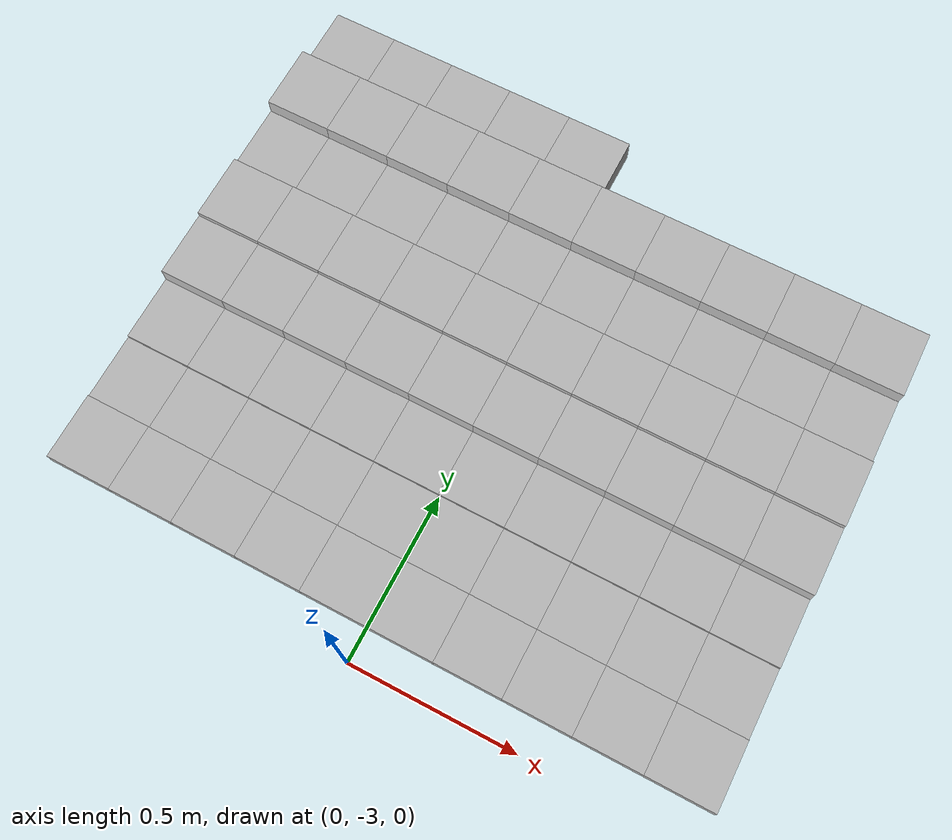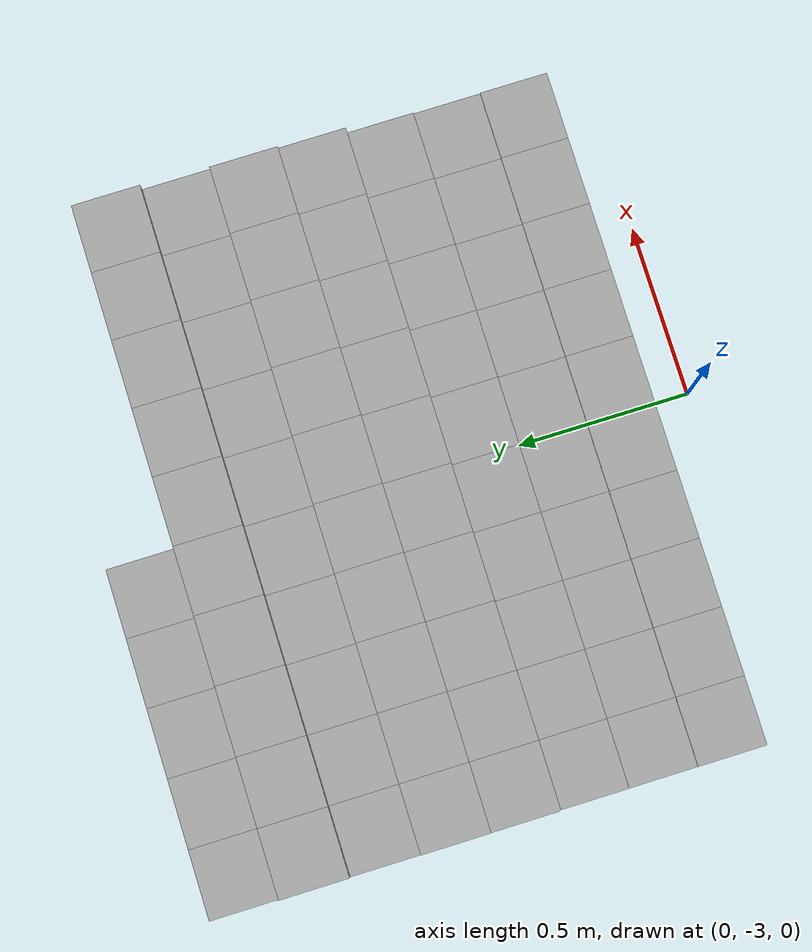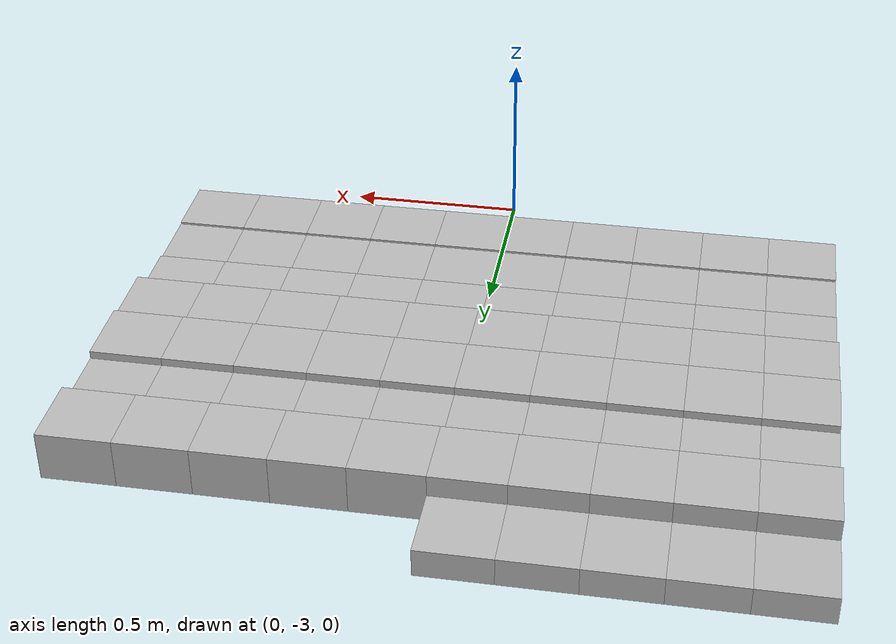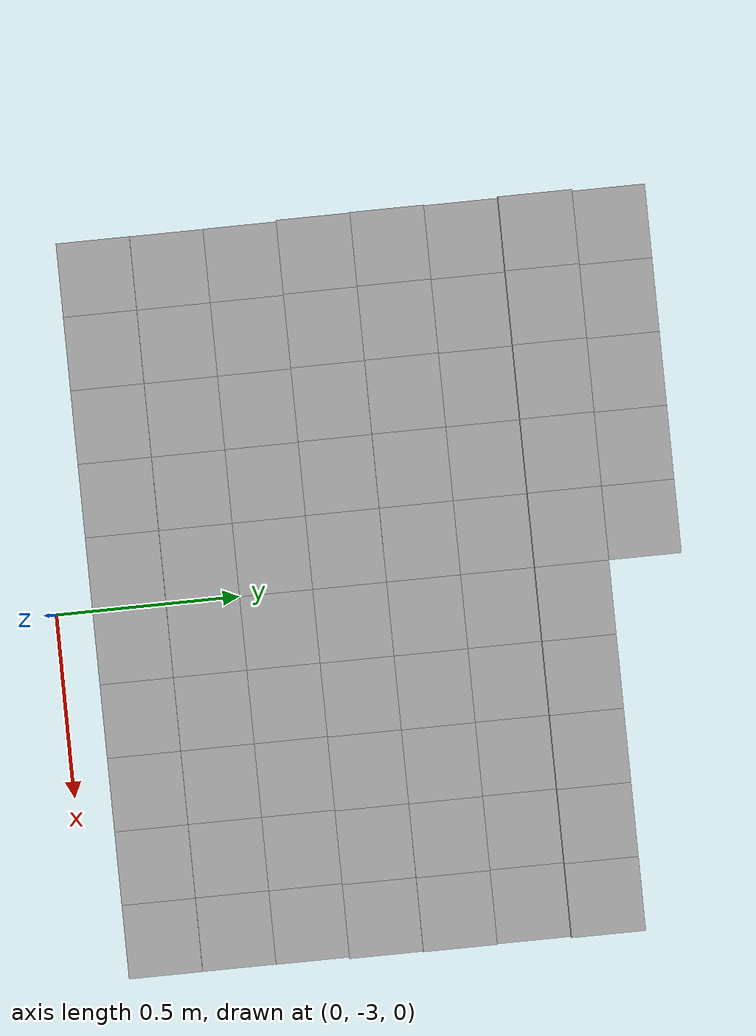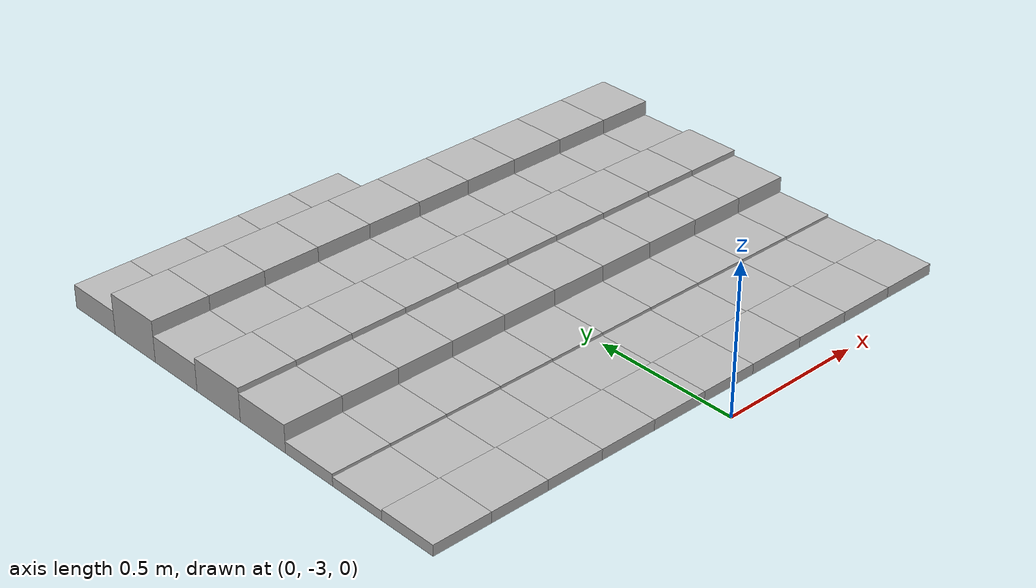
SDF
<sdf version="1.6">
 <model name="Terrain">
  <static>true</static>
  <link name="box_7_0">
   <pose>-0.9 -1.4 0.039535048557 0 0 0</pose>
   <inertial>
    <mass>1.0</mass>
    <inertia><ixx>0.0</ixx><ixy>0.0</ixy><ixz>0.0</ixz><iyy>0.0</iyy><iyz>0.0</iyz><izz>0.0</izz></inertia>
   </inertial>
   <collision name="collision"><geometry><box><size>0.2 0.2 0.079070097114</size></box></geometry></collision>
   <visual name="visual"><geometry><box><size>0.2 0.2 0.079070097114</size></box></geometry></visual>
  </link>
  <link name="box_7_1">
   <pose>-0.7 -1.4 0.039535048557 0 0 0</pose>
   <inertial>
    <mass>1.0</mass>
    <inertia><ixx>0.0</ixx><ixy>0.0</ixy><ixz>0.0</ixz><iyy>0.0</iyy><iyz>0.0</iyz><izz>0.0</izz></inertia>
   </inertial>
   <collision name="collision"><geometry><box><size>0.2 0.2 0.079070097114</size></box></geometry></collision>
   <visual name="visual"><geometry><box><size>0.2 0.2 0.079070097114</size></box></geometry></visual>
  </link>
  <link name="box_7_2">
   <pose>-0.5 -1.4 0.039535048557 0 0 0</pose>
   <inertial>
    <mass>1.0</mass>
    <inertia><ixx>0.0</ixx><ixy>0.0</ixy><ixz>0.0</ixz><iyy>0.0</iyy><iyz>0.0</iyz><izz>0.0</izz></inertia>
   </inertial>
   <collision name="collision"><geometry><box><size>0.2 0.2 0.079070097114</size></box></geometry></collision>
   <visual name="visual"><geometry><box><size>0.2 0.2 0.079070097114</size></box></geometry></visual>
  </link>
  <link name="box_7_3">
   <pose>-0.3 -1.4 0.039535048557 0 0 0</pose>
   <inertial>
    <mass>1.0</mass>
    <inertia><ixx>0.0</ixx><ixy>0.0</ixy><ixz>0.0</ixz><iyy>0.0</iyy><iyz>0.0</iyz><izz>0.0</izz></inertia>
   </inertial>
   <collision name="collision"><geometry><box><size>0.2 0.2 0.079070097114</size></box></geometry></collision>
   <visual name="visual"><geometry><box><size>0.2 0.2 0.079070097114</size></box></geometry></visual>
  </link>
  <link name="box_7_4">
   <pose>-0.1 -1.4 0.039535048557 0 0 0</pose>
   <inertial>
    <mass>1.0</mass>
    <inertia><ixx>0.0</ixx><ixy>0.0</ixy><ixz>0.0</ixz><iyy>0.0</iyy><iyz>0.0</iyz><izz>0.0</izz></inertia>
   </inertial>
   <collision name="collision"><geometry><box><size>0.2 0.2 0.079070097114</size></box></geometry></collision>
   <visual name="visual"><geometry><box><size>0.2 0.2 0.079070097114</size></box></geometry></visual>
  </link>
  <link name="box_8_0">
   <pose>-0.9 -1.6 0.0695468220321 0 0 0</pose>
   <inertial>
    <mass>1.0</mass>
    <inertia><ixx>0.0</ixx><ixy>0.0</ixy><ixz>0.0</ixz><iyy>0.0</iyy><iyz>0.0</iyz><izz>0.0</izz></inertia>
   </inertial>
   <collision name="collision"><geometry><box><size>0.2 0.2 0.139093644064</size></box></geometry></collision>
   <visual name="visual"><geometry><box><size>0.2 0.2 0.139093644064</size></box></geometry></visual>
  </link>
  <link name="box_8_1">
   <pose>-0.7 -1.6 0.0695468220321 0 0 0</pose>
   <inertial>
    <mass>1.0</mass>
    <inertia><ixx>0.0</ixx><ixy>0.0</ixy><ixz>0.0</ixz><iyy>0.0</iyy><iyz>0.0</iyz><izz>0.0</izz></inertia>
   </inertial>
   <collision name="collision"><geometry><box><size>0.2 0.2 0.139093644064</size></box></geometry></collision>
   <visual name="visual"><geometry><box><size>0.2 0.2 0.139093644064</size></box></geometry></visual>
  </link>
  <link name="box_8_2">
   <pose>-0.5 -1.6 0.0695468220321 0 0 0</pose>
   <inertial>
    <mass>1.0</mass>
    <inertia><ixx>0.0</ixx><ixy>0.0</ixy><ixz>0.0</ixz><iyy>0.0</iyy><iyz>0.0</iyz><izz>0.0</izz></inertia>
   </inertial>
   <collision name="collision"><geometry><box><size>0.2 0.2 0.139093644064</size></box></geometry></collision>
   <visual name="visual"><geometry><box><size>0.2 0.2 0.139093644064</size></box></geometry></visual>
  </link>
  <link name="box_8_3">
   <pose>-0.3 -1.6 0.0695468220321 0 0 0</pose>
   <inertial>
    <mass>1.0</mass>
    <inertia><ixx>0.0</ixx><ixy>0.0</ixy><ixz>0.0</ixz><iyy>0.0</iyy><iyz>0.0</iyz><izz>0.0</izz></inertia>
   </inertial>
   <collision name="collision"><geometry><box><size>0.2 0.2 0.139093644064</size></box></geometry></collision>
   <visual name="visual"><geometry><box><size>0.2 0.2 0.139093644064</size></box></geometry></visual>
  </link>
  <link name="box_8_4">
   <pose>-0.1 -1.6 0.0695468220321 0 0 0</pose>
   <inertial>
    <mass>1.0</mass>
    <inertia><ixx>0.0</ixx><ixy>0.0</ixy><ixz>0.0</ixz><iyy>0.0</iyy><iyz>0.0</iyz><izz>0.0</izz></inertia>
   </inertial>
   <collision name="collision"><geometry><box><size>0.2 0.2 0.139093644064</size></box></geometry></collision>
   <visual name="visual"><geometry><box><size>0.2 0.2 0.139093644064</size></box></geometry></visual>
  </link>
  <link name="box_8_5">
   <pose>0.1 -1.6 0.0695468220321 0 0 0</pose>
   <inertial>
    <mass>1.0</mass>
    <inertia><ixx>0.0</ixx><ixy>0.0</ixy><ixz>0.0</ixz><iyy>0.0</iyy><iyz>0.0</iyz><izz>0.0</izz></inertia>
   </inertial>
   <collision name="collision"><geometry><box><size>0.2 0.2 0.139093644064</size></box></geometry></collision>
   <visual name="visual"><geometry><box><size>0.2 0.2 0.139093644064</size></box></geometry></visual>
  </link>
  <link name="box_8_6">
   <pose>0.3 -1.6 0.0695468220321 0 0 0</pose>
   <inertial>
    <mass>1.0</mass>
    <inertia><ixx>0.0</ixx><ixy>0.0</ixy><ixz>0.0</ixz><iyy>0.0</iyy><iyz>0.0</iyz><izz>0.0</izz></inertia>
   </inertial>
   <collision name="collision"><geometry><box><size>0.2 0.2 0.139093644064</size></box></geometry></collision>
   <visual name="visual"><geometry><box><size>0.2 0.2 0.139093644064</size></box></geometry></visual>
  </link>
  <link name="box_8_7">
   <pose>0.5 -1.6 0.0695468220321 0 0 0</pose>
   <inertial>
    <mass>1.0</mass>
    <inertia><ixx>0.0</ixx><ixy>0.0</ixy><ixz>0.0</ixz><iyy>0.0</iyy><iyz>0.0</iyz><izz>0.0</izz></inertia>
   </inertial>
   <collision name="collision"><geometry><box><size>0.2 0.2 0.139093644064</size></box></geometry></collision>
   <visual name="visual"><geometry><box><size>0.2 0.2 0.139093644064</size></box></geometry></visual>
  </link>
  <link name="box_8_8">
   <pose>0.7 -1.6 0.0695468220321 0 0 0</pose>
   <inertial>
    <mass>1.0</mass>
    <inertia><ixx>0.0</ixx><ixy>0.0</ixy><ixz>0.0</ixz><iyy>0.0</iyy><iyz>0.0</iyz><izz>0.0</izz></inertia>
   </inertial>
   <collision name="collision"><geometry><box><size>0.2 0.2 0.139093644064</size></box></geometry></collision>
   <visual name="visual"><geometry><box><size>0.2 0.2 0.139093644064</size></box></geometry></visual>
  </link>
  <link name="box_8_9">
   <pose>0.9 -1.6 0.0695468220321 0 0 0</pose>
   <inertial>
    <mass>1.0</mass>
    <inertia><ixx>0.0</ixx><ixy>0.0</ixy><ixz>0.0</ixz><iyy>0.0</iyy><iyz>0.0</iyz><izz>0.0</izz></inertia>
   </inertial>
   <collision name="collision"><geometry><box><size>0.2 0.2 0.139093644064</size></box></geometry></collision>
   <visual name="visual"><geometry><box><size>0.2 0.2 0.139093644064</size></box></geometry></visual>
  </link>
  <link name="box_9_0">
   <pose>-0.9 -1.8 0.0444870655065 0 0 0</pose>
   <inertial>
    <mass>1.0</mass>
    <inertia><ixx>0.0</ixx><ixy>0.0</ixy><ixz>0.0</ixz><iyy>0.0</iyy><iyz>0.0</iyz><izz>0.0</izz></inertia>
   </inertial>
   <collision name="collision"><geometry><box><size>0.2 0.2 0.088974131013</size></box></geometry></collision>
   <visual name="visual"><geometry><box><size>0.2 0.2 0.088974131013</size></box></geometry></visual>
  </link>
  <link name="box_9_1">
   <pose>-0.7 -1.8 0.0444870655065 0 0 0</pose>
   <inertial>
    <mass>1.0</mass>
    <inertia><ixx>0.0</ixx><ixy>0.0</ixy><ixz>0.0</ixz><iyy>0.0</iyy><iyz>0.0</iyz><izz>0.0</izz></inertia>
   </inertial>
   <collision name="collision"><geometry><box><size>0.2 0.2 0.088974131013</size></box></geometry></collision>
   <visual name="visual"><geometry><box><size>0.2 0.2 0.088974131013</size></box></geometry></visual>
  </link>
  <link name="box_9_2">
   <pose>-0.5 -1.8 0.0444870655065 0 0 0</pose>
   <inertial>
    <mass>1.0</mass>
    <inertia><ixx>0.0</ixx><ixy>0.0</ixy><ixz>0.0</ixz><iyy>0.0</iyy><iyz>0.0</iyz><izz>0.0</izz></inertia>
   </inertial>
   <collision name="collision"><geometry><box><size>0.2 0.2 0.088974131013</size></box></geometry></collision>
   <visual name="visual"><geometry><box><size>0.2 0.2 0.088974131013</size></box></geometry></visual>
  </link>
  <link name="box_9_3">
   <pose>-0.3 -1.8 0.0444870655065 0 0 0</pose>
   <inertial>
    <mass>1.0</mass>
    <inertia><ixx>0.0</ixx><ixy>0.0</ixy><ixz>0.0</ixz><iyy>0.0</iyy><iyz>0.0</iyz><izz>0.0</izz></inertia>
   </inertial>
   <collision name="collision"><geometry><box><size>0.2 0.2 0.088974131013</size></box></geometry></collision>
   <visual name="visual"><geometry><box><size>0.2 0.2 0.088974131013</size></box></geometry></visual>
  </link>
  <link name="box_9_4">
   <pose>-0.1 -1.8 0.0444870655065 0 0 0</pose>
   <inertial>
    <mass>1.0</mass>
    <inertia><ixx>0.0</ixx><ixy>0.0</ixy><ixz>0.0</ixz><iyy>0.0</iyy><iyz>0.0</iyz><izz>0.0</izz></inertia>
   </inertial>
   <collision name="collision"><geometry><box><size>0.2 0.2 0.088974131013</size></box></geometry></collision>
   <visual name="visual"><geometry><box><size>0.2 0.2 0.088974131013</size></box></geometry></visual>
  </link>
  <link name="box_9_5">
   <pose>0.1 -1.8 0.0444870655065 0 0 0</pose>
   <inertial>
    <mass>1.0</mass>
    <inertia><ixx>0.0</ixx><ixy>0.0</ixy><ixz>0.0</ixz><iyy>0.0</iyy><iyz>0.0</iyz><izz>0.0</izz></inertia>
   </inertial>
   <collision name="collision"><geometry><box><size>0.2 0.2 0.088974131013</size></box></geometry></collision>
   <visual name="visual"><geometry><box><size>0.2 0.2 0.088974131013</size></box></geometry></visual>
  </link>
  <link name="box_9_6">
   <pose>0.3 -1.8 0.0444870655065 0 0 0</pose>
   <inertial>
    <mass>1.0</mass>
    <inertia><ixx>0.0</ixx><ixy>0.0</ixy><ixz>0.0</ixz><iyy>0.0</iyy><iyz>0.0</iyz><izz>0.0</izz></inertia>
   </inertial>
   <collision name="collision"><geometry><box><size>0.2 0.2 0.088974131013</size></box></geometry></collision>
   <visual name="visual"><geometry><box><size>0.2 0.2 0.088974131013</size></box></geometry></visual>
  </link>
  <link name="box_9_7">
   <pose>0.5 -1.8 0.0444870655065 0 0 0</pose>
   <inertial>
    <mass>1.0</mass>
    <inertia><ixx>0.0</ixx><ixy>0.0</ixy><ixz>0.0</ixz><iyy>0.0</iyy><iyz>0.0</iyz><izz>0.0</izz></inertia>
   </inertial>
   <collision name="collision"><geometry><box><size>0.2 0.2 0.088974131013</size></box></geometry></collision>
   <visual name="visual"><geometry><box><size>0.2 0.2 0.088974131013</size></box></geometry></visual>
  </link>
  <link name="box_9_8">
   <pose>0.7 -1.8 0.0444870655065 0 0 0</pose>
   <inertial>
    <mass>1.0</mass>
    <inertia><ixx>0.0</ixx><ixy>0.0</ixy><ixz>0.0</ixz><iyy>0.0</iyy><iyz>0.0</iyz><izz>0.0</izz></inertia>
   </inertial>
   <collision name="collision"><geometry><box><size>0.2 0.2 0.088974131013</size></box></geometry></collision>
   <visual name="visual"><geometry><box><size>0.2 0.2 0.088974131013</size></box></geometry></visual>
  </link>
  <link name="box_9_9">
   <pose>0.9 -1.8 0.0444870655065 0 0 0</pose>
   <inertial>
    <mass>1.0</mass>
    <inertia><ixx>0.0</ixx><ixy>0.0</ixy><ixz>0.0</ixz><iyy>0.0</iyy><iyz>0.0</iyz><izz>0.0</izz></inertia>
   </inertial>
   <collision name="collision"><geometry><box><size>0.2 0.2 0.088974131013</size></box></geometry></collision>
   <visual name="visual"><geometry><box><size>0.2 0.2 0.088974131013</size></box></geometry></visual>
  </link>
  <link name="box_10_0">
   <pose>-0.9 -2.0 0.0556117659513 0 0 0</pose>
   <inertial>
    <mass>1.0</mass>
    <inertia><ixx>0.0</ixx><ixy>0.0</ixy><ixz>0.0</ixz><iyy>0.0</iyy><iyz>0.0</iyz><izz>0.0</izz></inertia>
   </inertial>
   <collision name="collision"><geometry><box><size>0.2 0.2 0.111223531903</size></box></geometry></collision>
   <visual name="visual"><geometry><box><size>0.2 0.2 0.111223531903</size></box></geometry></visual>
  </link>
  <link name="box_10_1">
   <pose>-0.7 -2.0 0.0556117659513 0 0 0</pose>
   <inertial>
    <mass>1.0</mass>
    <inertia><ixx>0.0</ixx><ixy>0.0</ixy><ixz>0.0</ixz><iyy>0.0</iyy><iyz>0.0</iyz><izz>0.0</izz></inertia>
   </inertial>
   <collision name="collision"><geometry><box><size>0.2 0.2 0.111223531903</size></box></geometry></collision>
   <visual name="visual"><geometry><box><size>0.2 0.2 0.111223531903</size></box></geometry></visual>
  </link>
  <link name="box_10_2">
   <pose>-0.5 -2.0 0.0556117659513 0 0 0</pose>
   <inertial>
    <mass>1.0</mass>
    <inertia><ixx>0.0</ixx><ixy>0.0</ixy><ixz>0.0</ixz><iyy>0.0</iyy><iyz>0.0</iyz><izz>0.0</izz></inertia>
   </inertial>
   <collision name="collision"><geometry><box><size>0.2 0.2 0.111223531903</size></box></geometry></collision>
   <visual name="visual"><geometry><box><size>0.2 0.2 0.111223531903</size></box></geometry></visual>
  </link>
  <link name="box_10_3">
   <pose>-0.3 -2.0 0.0556117659513 0 0 0</pose>
   <inertial>
    <mass>1.0</mass>
    <inertia><ixx>0.0</ixx><ixy>0.0</ixy><ixz>0.0</ixz><iyy>0.0</iyy><iyz>0.0</iyz><izz>0.0</izz></inertia>
   </inertial>
   <collision name="collision"><geometry><box><size>0.2 0.2 0.111223531903</size></box></geometry></collision>
   <visual name="visual"><geometry><box><size>0.2 0.2 0.111223531903</size></box></geometry></visual>
  </link>
  <link name="box_10_4">
   <pose>-0.1 -2.0 0.0556117659513 0 0 0</pose>
   <inertial>
    <mass>1.0</mass>
    <inertia><ixx>0.0</ixx><ixy>0.0</ixy><ixz>0.0</ixz><iyy>0.0</iyy><iyz>0.0</iyz><izz>0.0</izz></inertia>
   </inertial>
   <collision name="collision"><geometry><box><size>0.2 0.2 0.111223531903</size></box></geometry></collision>
   <visual name="visual"><geometry><box><size>0.2 0.2 0.111223531903</size></box></geometry></visual>
  </link>
  <link name="box_10_5">
   <pose>0.1 -2.0 0.0556117659513 0 0 0</pose>
   <inertial>
    <mass>1.0</mass>
    <inertia><ixx>0.0</ixx><ixy>0.0</ixy><ixz>0.0</ixz><iyy>0.0</iyy><iyz>0.0</iyz><izz>0.0</izz></inertia>
   </inertial>
   <collision name="collision"><geometry><box><size>0.2 0.2 0.111223531903</size></box></geometry></collision>
   <visual name="visual"><geometry><box><size>0.2 0.2 0.111223531903</size></box></geometry></visual>
  </link>
  <link name="box_10_6">
   <pose>0.3 -2.0 0.0556117659513 0 0 0</pose>
   <inertial>
    <mass>1.0</mass>
    <inertia><ixx>0.0</ixx><ixy>0.0</ixy><ixz>0.0</ixz><iyy>0.0</iyy><iyz>0.0</iyz><izz>0.0</izz></inertia>
   </inertial>
   <collision name="collision"><geometry><box><size>0.2 0.2 0.111223531903</size></box></geometry></collision>
   <visual name="visual"><geometry><box><size>0.2 0.2 0.111223531903</size></box></geometry></visual>
  </link>
  <link name="box_10_7">
   <pose>0.5 -2.0 0.0556117659513 0 0 0</pose>
   <inertial>
    <mass>1.0</mass>
    <inertia><ixx>0.0</ixx><ixy>0.0</ixy><ixz>0.0</ixz><iyy>0.0</iyy><iyz>0.0</iyz><izz>0.0</izz></inertia>
   </inertial>
   <collision name="collision"><geometry><box><size>0.2 0.2 0.111223531903</size></box></geometry></collision>
   <visual name="visual"><geometry><box><size>0.2 0.2 0.111223531903</size></box></geometry></visual>
  </link>
  <link name="box_10_8">
   <pose>0.7 -2.0 0.0556117659513 0 0 0</pose>
   <inertial>
    <mass>1.0</mass>
    <inertia><ixx>0.0</ixx><ixy>0.0</ixy><ixz>0.0</ixz><iyy>0.0</iyy><iyz>0.0</iyz><izz>0.0</izz></inertia>
   </inertial>
   <collision name="collision"><geometry><box><size>0.2 0.2 0.111223531903</size></box></geometry></collision>
   <visual name="visual"><geometry><box><size>0.2 0.2 0.111223531903</size></box></geometry></visual>
  </link>
  <link name="box_10_9">
   <pose>0.9 -2.0 0.0556117659513 0 0 0</pose>
   <inertial>
    <mass>1.0</mass>
    <inertia><ixx>0.0</ixx><ixy>0.0</ixy><ixz>0.0</ixz><iyy>0.0</iyy><iyz>0.0</iyz><izz>0.0</izz></inertia>
   </inertial>
   <collision name="collision"><geometry><box><size>0.2 0.2 0.111223531903</size></box></geometry></collision>
   <visual name="visual"><geometry><box><size>0.2 0.2 0.111223531903</size></box></geometry></visual>
  </link>
  <link name="box_11_0">
   <pose>-0.9 -2.2 0.0463895648136 0 0 0</pose>
   <inertial>
    <mass>1.0</mass>
    <inertia><ixx>0.0</ixx><ixy>0.0</ixy><ixz>0.0</ixz><iyy>0.0</iyy><iyz>0.0</iyz><izz>0.0</izz></inertia>
   </inertial>
   <collision name="collision"><geometry><box><size>0.2 0.2 0.0927791296272</size></box></geometry></collision>
   <visual name="visual"><geometry><box><size>0.2 0.2 0.0927791296272</size></box></geometry></visual>
  </link>
  <link name="box_11_1">
   <pose>-0.7 -2.2 0.0463895648136 0 0 0</pose>
   <inertial>
    <mass>1.0</mass>
    <inertia><ixx>0.0</ixx><ixy>0.0</ixy><ixz>0.0</ixz><iyy>0.0</iyy><iyz>0.0</iyz><izz>0.0</izz></inertia>
   </inertial>
   <collision name="collision"><geometry><box><size>0.2 0.2 0.0927791296272</size></box></geometry></collision>
   <visual name="visual"><geometry><box><size>0.2 0.2 0.0927791296272</size></box></geometry></visual>
  </link>
  <link name="box_11_2">
   <pose>-0.5 -2.2 0.0463895648136 0 0 0</pose>
   <inertial>
    <mass>1.0</mass>
    <inertia><ixx>0.0</ixx><ixy>0.0</ixy><ixz>0.0</ixz><iyy>0.0</iyy><iyz>0.0</iyz><izz>0.0</izz></inertia>
   </inertial>
   <collision name="collision"><geometry><box><size>0.2 0.2 0.0927791296272</size></box></geometry></collision>
   <visual name="visual"><geometry><box><size>0.2 0.2 0.0927791296272</size></box></geometry></visual>
  </link>
  <link name="box_11_3">
   <pose>-0.3 -2.2 0.0463895648136 0 0 0</pose>
   <inertial>
    <mass>1.0</mass>
    <inertia><ixx>0.0</ixx><ixy>0.0</ixy><ixz>0.0</ixz><iyy>0.0</iyy><iyz>0.0</iyz><izz>0.0</izz></inertia>
   </inertial>
   <collision name="collision"><geometry><box><size>0.2 0.2 0.0927791296272</size></box></geometry></collision>
   <visual name="visual"><geometry><box><size>0.2 0.2 0.0927791296272</size></box></geometry></visual>
  </link>
  <link name="box_11_4">
   <pose>-0.1 -2.2 0.0463895648136 0 0 0</pose>
   <inertial>
    <mass>1.0</mass>
    <inertia><ixx>0.0</ixx><ixy>0.0</ixy><ixz>0.0</ixz><iyy>0.0</iyy><iyz>0.0</iyz><izz>0.0</izz></inertia>
   </inertial>
   <collision name="collision"><geometry><box><size>0.2 0.2 0.0927791296272</size></box></geometry></collision>
   <visual name="visual"><geometry><box><size>0.2 0.2 0.0927791296272</size></box></geometry></visual>
  </link>
  <link name="box_11_5">
   <pose>0.1 -2.2 0.0463895648136 0 0 0</pose>
   <inertial>
    <mass>1.0</mass>
    <inertia><ixx>0.0</ixx><ixy>0.0</ixy><ixz>0.0</ixz><iyy>0.0</iyy><iyz>0.0</iyz><izz>0.0</izz></inertia>
   </inertial>
   <collision name="collision"><geometry><box><size>0.2 0.2 0.0927791296272</size></box></geometry></collision>
   <visual name="visual"><geometry><box><size>0.2 0.2 0.0927791296272</size></box></geometry></visual>
  </link>
  <link name="box_11_6">
   <pose>0.3 -2.2 0.0463895648136 0 0 0</pose>
   <inertial>
    <mass>1.0</mass>
    <inertia><ixx>0.0</ixx><ixy>0.0</ixy><ixz>0.0</ixz><iyy>0.0</iyy><iyz>0.0</iyz><izz>0.0</izz></inertia>
   </inertial>
   <collision name="collision"><geometry><box><size>0.2 0.2 0.0927791296272</size></box></geometry></collision>
   <visual name="visual"><geometry><box><size>0.2 0.2 0.0927791296272</size></box></geometry></visual>
  </link>
  <link name="box_11_7">
   <pose>0.5 -2.2 0.0463895648136 0 0 0</pose>
   <inertial>
    <mass>1.0</mass>
    <inertia><ixx>0.0</ixx><ixy>0.0</ixy><ixz>0.0</ixz><iyy>0.0</iyy><iyz>0.0</iyz><izz>0.0</izz></inertia>
   </inertial>
   <collision name="collision"><geometry><box><size>0.2 0.2 0.0927791296272</size></box></geometry></collision>
   <visual name="visual"><geometry><box><size>0.2 0.2 0.0927791296272</size></box></geometry></visual>
  </link>
  <link name="box_11_8">
   <pose>0.7 -2.2 0.0463895648136 0 0 0</pose>
   <inertial>
    <mass>1.0</mass>
    <inertia><ixx>0.0</ixx><ixy>0.0</ixy><ixz>0.0</ixz><iyy>0.0</iyy><iyz>0.0</iyz><izz>0.0</izz></inertia>
   </inertial>
   <collision name="collision"><geometry><box><size>0.2 0.2 0.0927791296272</size></box></geometry></collision>
   <visual name="visual"><geometry><box><size>0.2 0.2 0.0927791296272</size></box></geometry></visual>
  </link>
  <link name="box_11_9">
   <pose>0.9 -2.2 0.0463895648136 0 0 0</pose>
   <inertial>
    <mass>1.0</mass>
    <inertia><ixx>0.0</ixx><ixy>0.0</ixy><ixz>0.0</ixz><iyy>0.0</iyy><iyz>0.0</iyz><izz>0.0</izz></inertia>
   </inertial>
   <collision name="collision"><geometry><box><size>0.2 0.2 0.0927791296272</size></box></geometry></collision>
   <visual name="visual"><geometry><box><size>0.2 0.2 0.0927791296272</size></box></geometry></visual>
  </link>
  <link name="box_12_0">
   <pose>-0.9 -2.4 0.0196631140466 0 0 0</pose>
   <inertial>
    <mass>1.0</mass>
    <inertia><ixx>0.0</ixx><ixy>0.0</ixy><ixz>0.0</ixz><iyy>0.0</iyy><iyz>0.0</iyz><izz>0.0</izz></inertia>
   </inertial>
   <collision name="collision"><geometry><box><size>0.2 0.2 0.0393262280933</size></box></geometry></collision>
   <visual name="visual"><geometry><box><size>0.2 0.2 0.0393262280933</size></box></geometry></visual>
  </link>
  <link name="box_12_1">
   <pose>-0.7 -2.4 0.0196631140466 0 0 0</pose>
   <inertial>
    <mass>1.0</mass>
    <inertia><ixx>0.0</ixx><ixy>0.0</ixy><ixz>0.0</ixz><iyy>0.0</iyy><iyz>0.0</iyz><izz>0.0</izz></inertia>
   </inertial>
   <collision name="collision"><geometry><box><size>0.2 0.2 0.0393262280933</size></box></geometry></collision>
   <visual name="visual"><geometry><box><size>0.2 0.2 0.0393262280933</size></box></geometry></visual>
  </link>
  <link name="box_12_2">
   <pose>-0.5 -2.4 0.0196631140466 0 0 0</pose>
   <inertial>
    <mass>1.0</mass>
    <inertia><ixx>0.0</ixx><ixy>0.0</ixy><ixz>0.0</ixz><iyy>0.0</iyy><iyz>0.0</iyz><izz>0.0</izz></inertia>
   </inertial>
   <collision name="collision"><geometry><box><size>0.2 0.2 0.0393262280933</size></box></geometry></collision>
   <visual name="visual"><geometry><box><size>0.2 0.2 0.0393262280933</size></box></geometry></visual>
  </link>
  <link name="box_12_3">
   <pose>-0.3 -2.4 0.0196631140466 0 0 0</pose>
   <inertial>
    <mass>1.0</mass>
    <inertia><ixx>0.0</ixx><ixy>0.0</ixy><ixz>0.0</ixz><iyy>0.0</iyy><iyz>0.0</iyz><izz>0.0</izz></inertia>
   </inertial>
   <collision name="collision"><geometry><box><size>0.2 0.2 0.0393262280933</size></box></geometry></collision>
   <visual name="visual"><geometry><box><size>0.2 0.2 0.0393262280933</size></box></geometry></visual>
  </link>
  <link name="box_12_4">
   <pose>-0.1 -2.4 0.0196631140466 0 0 0</pose>
   <inertial>
    <mass>1.0</mass>
    <inertia><ixx>0.0</ixx><ixy>0.0</ixy><ixz>0.0</ixz><iyy>0.0</iyy><iyz>0.0</iyz><izz>0.0</izz></inertia>
   </inertial>
   <collision name="collision"><geometry><box><size>0.2 0.2 0.0393262280933</size></box></geometry></collision>
   <visual name="visual"><geometry><box><size>0.2 0.2 0.0393262280933</size></box></geometry></visual>
  </link>
  <link name="box_12_5">
   <pose>0.1 -2.4 0.0196631140466 0 0 0</pose>
   <inertial>
    <mass>1.0</mass>
    <inertia><ixx>0.0</ixx><ixy>0.0</ixy><ixz>0.0</ixz><iyy>0.0</iyy><iyz>0.0</iyz><izz>0.0</izz></inertia>
   </inertial>
   <collision name="collision"><geometry><box><size>0.2 0.2 0.0393262280933</size></box></geometry></collision>
   <visual name="visual"><geometry><box><size>0.2 0.2 0.0393262280933</size></box></geometry></visual>
  </link>
  <link name="box_12_6">
   <pose>0.3 -2.4 0.0196631140466 0 0 0</pose>
   <inertial>
    <mass>1.0</mass>
    <inertia><ixx>0.0</ixx><ixy>0.0</ixy><ixz>0.0</ixz><iyy>0.0</iyy><iyz>0.0</iyz><izz>0.0</izz></inertia>
   </inertial>
   <collision name="collision"><geometry><box><size>0.2 0.2 0.0393262280933</size></box></geometry></collision>
   <visual name="visual"><geometry><box><size>0.2 0.2 0.0393262280933</size></box></geometry></visual>
  </link>
  <link name="box_12_7">
   <pose>0.5 -2.4 0.0196631140466 0 0 0</pose>
   <inertial>
    <mass>1.0</mass>
    <inertia><ixx>0.0</ixx><ixy>0.0</ixy><ixz>0.0</ixz><iyy>0.0</iyy><iyz>0.0</iyz><izz>0.0</izz></inertia>
   </inertial>
   <collision name="collision"><geometry><box><size>0.2 0.2 0.0393262280933</size></box></geometry></collision>
   <visual name="visual"><geometry><box><size>0.2 0.2 0.0393262280933</size></box></geometry></visual>
  </link>
  <link name="box_12_8">
   <pose>0.7 -2.4 0.0196631140466 0 0 0</pose>
   <inertial>
    <mass>1.0</mass>
    <inertia><ixx>0.0</ixx><ixy>0.0</ixy><ixz>0.0</ixz><iyy>0.0</iyy><iyz>0.0</iyz><izz>0.0</izz></inertia>
   </inertial>
   <collision name="collision"><geometry><box><size>0.2 0.2 0.0393262280933</size></box></geometry></collision>
   <visual name="visual"><geometry><box><size>0.2 0.2 0.0393262280933</size></box></geometry></visual>
  </link>
  <link name="box_12_9">
   <pose>0.9 -2.4 0.0196631140466 0 0 0</pose>
   <inertial>
    <mass>1.0</mass>
    <inertia><ixx>0.0</ixx><ixy>0.0</ixy><ixz>0.0</ixz><iyy>0.0</iyy><iyz>0.0</iyz><izz>0.0</izz></inertia>
   </inertial>
   <collision name="collision"><geometry><box><size>0.2 0.2 0.0393262280933</size></box></geometry></collision>
   <visual name="visual"><geometry><box><size>0.2 0.2 0.0393262280933</size></box></geometry></visual>
  </link>
  <link name="box_13_0">
   <pose>-0.9 -2.6 0.0150660098065 0 0 0</pose>
   <inertial>
    <mass>1.0</mass>
    <inertia><ixx>0.0</ixx><ixy>0.0</ixy><ixz>0.0</ixz><iyy>0.0</iyy><iyz>0.0</iyz><izz>0.0</izz></inertia>
   </inertial>
   <collision name="collision"><geometry><box><size>0.2 0.2 0.0301320196129</size></box></geometry></collision>
   <visual name="visual"><geometry><box><size>0.2 0.2 0.0301320196129</size></box></geometry></visual>
  </link>
  <link name="box_13_1">
   <pose>-0.7 -2.6 0.0150660098065 0 0 0</pose>
   <inertial>
    <mass>1.0</mass>
    <inertia><ixx>0.0</ixx><ixy>0.0</ixy><ixz>0.0</ixz><iyy>0.0</iyy><iyz>0.0</iyz><izz>0.0</izz></inertia>
   </inertial>
   <collision name="collision"><geometry><box><size>0.2 0.2 0.0301320196129</size></box></geometry></collision>
   <visual name="visual"><geometry><box><size>0.2 0.2 0.0301320196129</size></box></geometry></visual>
  </link>
  <link name="box_13_2">
   <pose>-0.5 -2.6 0.0150660098065 0 0 0</pose>
   <inertial>
    <mass>1.0</mass>
    <inertia><ixx>0.0</ixx><ixy>0.0</ixy><ixz>0.0</ixz><iyy>0.0</iyy><iyz>0.0</iyz><izz>0.0</izz></inertia>
   </inertial>
   <collision name="collision"><geometry><box><size>0.2 0.2 0.0301320196129</size></box></geometry></collision>
   <visual name="visual"><geometry><box><size>0.2 0.2 0.0301320196129</size></box></geometry></visual>
  </link>
  <link name="box_13_3">
   <pose>-0.3 -2.6 0.0150660098065 0 0 0</pose>
   <inertial>
    <mass>1.0</mass>
    <inertia><ixx>0.0</ixx><ixy>0.0</ixy><ixz>0.0</ixz><iyy>0.0</iyy><iyz>0.0</iyz><izz>0.0</izz></inertia>
   </inertial>
   <collision name="collision"><geometry><box><size>0.2 0.2 0.0301320196129</size></box></geometry></collision>
   <visual name="visual"><geometry><box><size>0.2 0.2 0.0301320196129</size></box></geometry></visual>
  </link>
  <link name="box_13_4">
   <pose>-0.1 -2.6 0.0150660098065 0 0 0</pose>
   <inertial>
    <mass>1.0</mass>
    <inertia><ixx>0.0</ixx><ixy>0.0</ixy><ixz>0.0</ixz><iyy>0.0</iyy><iyz>0.0</iyz><izz>0.0</izz></inertia>
   </inertial>
   <collision name="collision"><geometry><box><size>0.2 0.2 0.0301320196129</size></box></geometry></collision>
   <visual name="visual"><geometry><box><size>0.2 0.2 0.0301320196129</size></box></geometry></visual>
  </link>
  <link name="box_13_5">
   <pose>0.1 -2.6 0.0150660098065 0 0 0</pose>
   <inertial>
    <mass>1.0</mass>
    <inertia><ixx>0.0</ixx><ixy>0.0</ixy><ixz>0.0</ixz><iyy>0.0</iyy><iyz>0.0</iyz><izz>0.0</izz></inertia>
   </inertial>
   <collision name="collision"><geometry><box><size>0.2 0.2 0.0301320196129</size></box></geometry></collision>
   <visual name="visual"><geometry><box><size>0.2 0.2 0.0301320196129</size></box></geometry></visual>
  </link>
  <link name="box_13_6">
   <pose>0.3 -2.6 0.0150660098065 0 0 0</pose>
   <inertial>
    <mass>1.0</mass>
    <inertia><ixx>0.0</ixx><ixy>0.0</ixy><ixz>0.0</ixz><iyy>0.0</iyy><iyz>0.0</iyz><izz>0.0</izz></inertia>
   </inertial>
   <collision name="collision"><geometry><box><size>0.2 0.2 0.0301320196129</size></box></geometry></collision>
   <visual name="visual"><geometry><box><size>0.2 0.2 0.0301320196129</size></box></geometry></visual>
  </link>
  <link name="box_13_7">
   <pose>0.5 -2.6 0.0150660098065 0 0 0</pose>
   <inertial>
    <mass>1.0</mass>
    <inertia><ixx>0.0</ixx><ixy>0.0</ixy><ixz>0.0</ixz><iyy>0.0</iyy><iyz>0.0</iyz><izz>0.0</izz></inertia>
   </inertial>
   <collision name="collision"><geometry><box><size>0.2 0.2 0.0301320196129</size></box></geometry></collision>
   <visual name="visual"><geometry><box><size>0.2 0.2 0.0301320196129</size></box></geometry></visual>
  </link>
  <link name="box_13_8">
   <pose>0.7 -2.6 0.0150660098065 0 0 0</pose>
   <inertial>
    <mass>1.0</mass>
    <inertia><ixx>0.0</ixx><ixy>0.0</ixy><ixz>0.0</ixz><iyy>0.0</iyy><iyz>0.0</iyz><izz>0.0</izz></inertia>
   </inertial>
   <collision name="collision"><geometry><box><size>0.2 0.2 0.0301320196129</size></box></geometry></collision>
   <visual name="visual"><geometry><box><size>0.2 0.2 0.0301320196129</size></box></geometry></visual>
  </link>
  <link name="box_13_9">
   <pose>0.9 -2.6 0.0150660098065 0 0 0</pose>
   <inertial>
    <mass>1.0</mass>
    <inertia><ixx>0.0</ixx><ixy>0.0</ixy><ixz>0.0</ixz><iyy>0.0</iyy><iyz>0.0</iyz><izz>0.0</izz></inertia>
   </inertial>
   <collision name="collision"><geometry><box><size>0.2 0.2 0.0301320196129</size></box></geometry></collision>
   <visual name="visual"><geometry><box><size>0.2 0.2 0.0301320196129</size></box></geometry></visual>
  </link>
  <link name="box_14_0">
   <pose>-0.9 -2.8 0.0180551199851 0 0 0</pose>
   <inertial>
    <mass>1.0</mass>
    <inertia><ixx>0.0</ixx><ixy>0.0</ixy><ixz>0.0</ixz><iyy>0.0</iyy><iyz>0.0</iyz><izz>0.0</izz></inertia>
   </inertial>
   <collision name="collision"><geometry><box><size>0.2 0.2 0.0361102399701</size></box></geometry></collision>
   <visual name="visual"><geometry><box><size>0.2 0.2 0.0361102399701</size></box></geometry></visual>
  </link>
  <link name="box_14_1">
   <pose>-0.7 -2.8 0.0180551199851 0 0 0</pose>
   <inertial>
    <mass>1.0</mass>
    <inertia><ixx>0.0</ixx><ixy>0.0</ixy><ixz>0.0</ixz><iyy>0.0</iyy><iyz>0.0</iyz><izz>0.0</izz></inertia>
   </inertial>
   <collision name="collision"><geometry><box><size>0.2 0.2 0.0361102399701</size></box></geometry></collision>
   <visual name="visual"><geometry><box><size>0.2 0.2 0.0361102399701</size></box></geometry></visual>
  </link>
  <link name="box_14_2">
   <pose>-0.5 -2.8 0.0180551199851 0 0 0</pose>
   <inertial>
    <mass>1.0</mass>
    <inertia><ixx>0.0</ixx><ixy>0.0</ixy><ixz>0.0</ixz><iyy>0.0</iyy><iyz>0.0</iyz><izz>0.0</izz></inertia>
   </inertial>
   <collision name="collision"><geometry><box><size>0.2 0.2 0.0361102399701</size></box></geometry></collision>
   <visual name="visual"><geometry><box><size>0.2 0.2 0.0361102399701</size></box></geometry></visual>
  </link>
  <link name="box_14_3">
   <pose>-0.3 -2.8 0.0180551199851 0 0 0</pose>
   <inertial>
    <mass>1.0</mass>
    <inertia><ixx>0.0</ixx><ixy>0.0</ixy><ixz>0.0</ixz><iyy>0.0</iyy><iyz>0.0</iyz><izz>0.0</izz></inertia>
   </inertial>
   <collision name="collision"><geometry><box><size>0.2 0.2 0.0361102399701</size></box></geometry></collision>
   <visual name="visual"><geometry><box><size>0.2 0.2 0.0361102399701</size></box></geometry></visual>
  </link>
  <link name="box_14_4">
   <pose>-0.1 -2.8 0.0180551199851 0 0 0</pose>
   <inertial>
    <mass>1.0</mass>
    <inertia><ixx>0.0</ixx><ixy>0.0</ixy><ixz>0.0</ixz><iyy>0.0</iyy><iyz>0.0</iyz><izz>0.0</izz></inertia>
   </inertial>
   <collision name="collision"><geometry><box><size>0.2 0.2 0.0361102399701</size></box></geometry></collision>
   <visual name="visual"><geometry><box><size>0.2 0.2 0.0361102399701</size></box></geometry></visual>
  </link>
  <link name="box_14_5">
   <pose>0.1 -2.8 0.0180551199851 0 0 0</pose>
   <inertial>
    <mass>1.0</mass>
    <inertia><ixx>0.0</ixx><ixy>0.0</ixy><ixz>0.0</ixz><iyy>0.0</iyy><iyz>0.0</iyz><izz>0.0</izz></inertia>
   </inertial>
   <collision name="collision"><geometry><box><size>0.2 0.2 0.0361102399701</size></box></geometry></collision>
   <visual name="visual"><geometry><box><size>0.2 0.2 0.0361102399701</size></box></geometry></visual>
  </link>
  <link name="box_14_6">
   <pose>0.3 -2.8 0.0180551199851 0 0 0</pose>
   <inertial>
    <mass>1.0</mass>
    <inertia><ixx>0.0</ixx><ixy>0.0</ixy><ixz>0.0</ixz><iyy>0.0</iyy><iyz>0.0</iyz><izz>0.0</izz></inertia>
   </inertial>
   <collision name="collision"><geometry><box><size>0.2 0.2 0.0361102399701</size></box></geometry></collision>
   <visual name="visual"><geometry><box><size>0.2 0.2 0.0361102399701</size></box></geometry></visual>
  </link>
  <link name="box_14_7">
   <pose>0.5 -2.8 0.0180551199851 0 0 0</pose>
   <inertial>
    <mass>1.0</mass>
    <inertia><ixx>0.0</ixx><ixy>0.0</ixy><ixz>0.0</ixz><iyy>0.0</iyy><iyz>0.0</iyz><izz>0.0</izz></inertia>
   </inertial>
   <collision name="collision"><geometry><box><size>0.2 0.2 0.0361102399701</size></box></geometry></collision>
   <visual name="visual"><geometry><box><size>0.2 0.2 0.0361102399701</size></box></geometry></visual>
  </link>
  <link name="box_14_8">
   <pose>0.7 -2.8 0.0180551199851 0 0 0</pose>
   <inertial>
    <mass>1.0</mass>
    <inertia><ixx>0.0</ixx><ixy>0.0</ixy><ixz>0.0</ixz><iyy>0.0</iyy><iyz>0.0</iyz><izz>0.0</izz></inertia>
   </inertial>
   <collision name="collision"><geometry><box><size>0.2 0.2 0.0361102399701</size></box></geometry></collision>
   <visual name="visual"><geometry><box><size>0.2 0.2 0.0361102399701</size></box></geometry></visual>
  </link>
  <link name="box_14_9">
   <pose>0.9 -2.8 0.0180551199851 0 0 0</pose>
   <inertial>
    <mass>1.0</mass>
    <inertia><ixx>0.0</ixx><ixy>0.0</ixy><ixz>0.0</ixz><iyy>0.0</iyy><iyz>0.0</iyz><izz>0.0</izz></inertia>
   </inertial>
   <collision name="collision"><geometry><box><size>0.2 0.2 0.0361102399701</size></box></geometry></collision>
   <visual name="visual"><geometry><box><size>0.2 0.2 0.0361102399701</size></box></geometry></visual>
  </link>
 </model>
</sdf>
